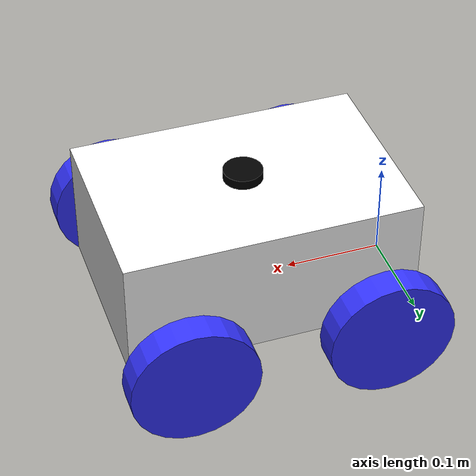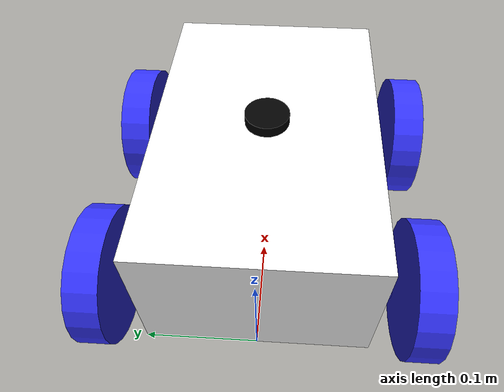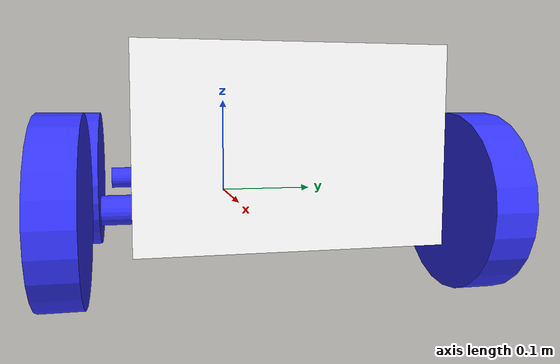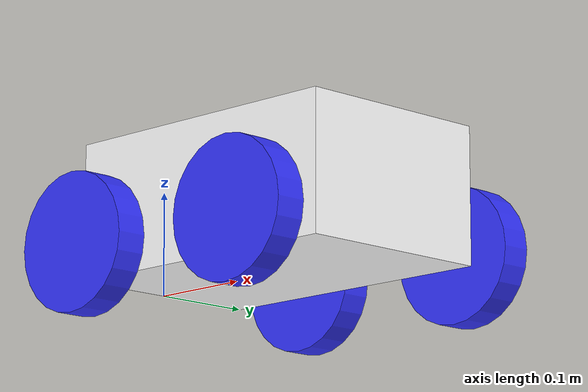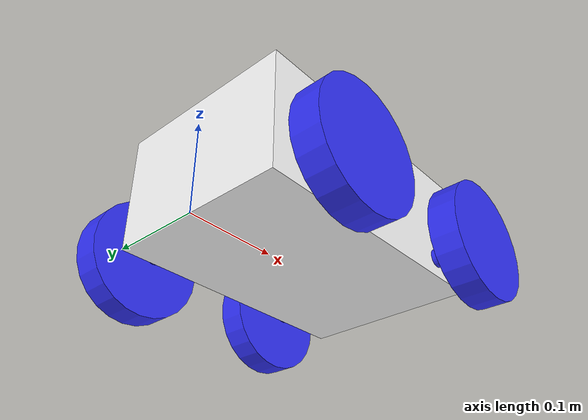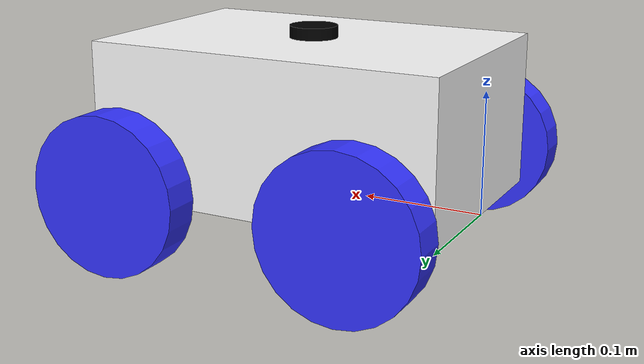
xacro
<?xml version="1.0"?>
<robot xmlns:xacro="http://www.ros.org/wiki/xacro" name="robot">

    <!-- Arguments -->
    <xacro:arg name="use_ros2_control" default="true" />
    <xacro:arg name="sim_mode" default="true" />

    <!-- Robot Description -->
    <xacro:include filename="robot_core.xacro" />

    <xacro:if value="$(arg use_ros2_control)">
        <xacro:include filename="ros2_control.xacro" />
    </xacro:if>

    <!-- Sensors -->
    <xacro:include filename="lidar.xacro" />

</robot>

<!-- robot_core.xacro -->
<robot xmlns:xacro="http://www.ros.org/wiki/xacro">

    <xacro:include filename="properties.xacro" />
    <xacro:include filename="materials.xacro" />
    <xacro:include filename="inertial_macros.xacro" />
    <xacro:include filename="robot_macros.xacro" />

    <!-- ================================ Links ================================ -->

    <!-- Base Link -->
    <link name="base_link" />

    <!-- Chasis Link -->
    <link name="chassis_link">
        <visual>
            <origin xyz="0 0 0" />
            <geometry>
                <box size="${chassis_length} ${chassis_width} ${chassis_height}" />
            </geometry>
            <material name="white" />
        </visual>
        <collision>
            <origin xyz="0 0 0" />
            <geometry>
                <box size="${chassis_length} ${chassis_width} ${chassis_height}" />
            </geometry>
        </collision>
        <xacro:inertial_box mass="${chassis_mass}" x="${chassis_length}" y="${chassis_width}"
            z="${chassis_height}">
            <origin xyz="0 0 0" />
        </xacro:inertial_box>
    </link>
    <gazebo reference="chassis">
        <material>Gazebo/White</material>
    </gazebo>

    <!-- Steering Links -->
    <xacro:steering_link prefix="front_left" />
    <xacro:steering_link prefix="front_right" />
    <xacro:steering_link prefix="rear_left" />
    <xacro:steering_link prefix="rear_right" />

    <!-- Wheel Links -->
    <xacro:wheel_link prefix="front_left" />
    <xacro:wheel_link prefix="front_right" />
    <xacro:wheel_link prefix="rear_left" />
    <xacro:wheel_link prefix="rear_right" />

    <!-- ================================ Joints ================================ -->

    <!-- Chassis Joint -->
    <joint name="chassis_joint" type="fixed">
        <parent link="base_link" />
        <child link="chassis_link" />
        <origin xyz="${chassis_offset_x} ${chassis_offset_y} ${chassis_offset_z}" />
    </joint>

    <!-- Steering Joints -->
    <xacro:steering_joint prefix="front_left" front="1" left="1" />
    <xacro:steering_joint prefix="front_right" front="1" left="-1" />
    <xacro:steering_joint prefix="rear_left" front="-1" left="1" />
    <xacro:steering_joint prefix="rear_right" front="-1" left="-1" />

    <!-- Wheel Joints -->
    <xacro:wheel_joint prefix="front_left" left="1" />
    <xacro:wheel_joint prefix="front_right" left="-1" />
    <xacro:wheel_joint prefix="rear_left" left="1" />
    <xacro:wheel_joint prefix="rear_right" left="-1" />

    <!-- ================================ Gazebo ================================ -->

    <gazebo>
        <plugin filename="ignition-gazebo-odometry-publisher-system" name="ignition::gazebo::systems::OdometryPublisher">
            <odom_frame>odom</odom_frame>
            <robot_base_frame>robot/base_link</robot_base_frame>
        </plugin>
    </gazebo>

</robot>

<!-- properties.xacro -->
<robot xmlns:xacro="http://www.ros.org/wiki/xacro" >

    <!-- Chassis -->
    <xacro:property name="chassis_length" value="0.300"/>
    <xacro:property name="chassis_width" value="0.200"/>
    <xacro:property name="chassis_height" value="0.130"/>
    <xacro:property name="chassis_mass" value="2.0"/>
    <xacro:property name="chassis_offset_x" value="${chassis_length/2}"/>
    <xacro:property name="chassis_offset_y" value="0"/>
    <xacro:property name="chassis_offset_z" value="${chassis_height/2}"/>

    <!-- Steering -->
    <xacro:property name="steering_radius" value="0.01"/>
    <xacro:property name="steering_length" value="0.02"/>
    <xacro:property name="steering_mass" value="0.02"/>
    <xacro:property name="steering_offset_x" value="${(2/3)*chassis_length/2}"/>
    <xacro:property name="steering_offset_y" value="${(chassis_width+steering_length)/2}"/>
    <xacro:property name="steering_offset_z" value="${(2/3)*chassis_height/2}"/>

    <!-- Wheels -->
    <xacro:property name="wheel_radius" value="0.065"/>
    <xacro:property name="wheel_thickness" value="0.030"/>
    <xacro:property name="wheel_mass" value="0.3"/>
    <xacro:property name="wheel_offset_z" value="${steering_length+wheel_thickness/2}"/>

</robot>

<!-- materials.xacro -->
<robot xmlns:xacro="http://www.ros.org/wiki/xacro">

    <!-- White -->
    <material name="white">
        <color rgba="1 1 1 1" />
    </material>

    <!-- Orange -->
    <material name="orange">
        <color rgba="1 0.3 0.1 1" />
    </material>

    <!-- Blue -->
    <material name="blue">
        <color rgba="0.2 0.2 1 1" />
    </material>

    <!-- Black -->
    <material name="black">
        <color rgba="0 0 0 1" />
    </material>

</robot>

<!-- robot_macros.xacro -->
<robot xmlns:xacro="http://www.ros.org/wiki/xacro">

    <xacro:include filename="properties.xacro" />

    <!-- Steering Link -->
    <xacro:macro name="steering_link" params="prefix">
        <link name="${prefix}_steering_link">
            <visual name="">
                <origin xyz="0 0 0" rpy="0 0 0" />
                <geometry>
                    <cylinder radius="${steering_radius}" length="${steering_length}" />
                </geometry>
                <material name="blue" />
            </visual>
            <collision>
                <origin xyz="0 0 0" rpy="0 0 0" />
                <geometry>
                    <cylinder radius="${steering_radius}" length="${steering_length}" />
                </geometry>
            </collision>
            <xacro:inertial_cylinder mass="${steering_mass}" length="${steering_length}"
                radius="${steering_radius}">
                <origin xyz="0 0 0" rpy="0 0 0" />
            </xacro:inertial_cylinder>
        </link>
        <gazebo reference="${prefix}_steering">
            <material>Gazebo/Blue</material>
            <mu1 value="0.5" />
            <mu2 value="0.5" />
        </gazebo>
    </xacro:macro>

    <!-- Wheel Link -->
    <xacro:macro name="wheel_link" params="prefix">
        <link name="${prefix}_wheel_link">
            <visual>
                <origin xyz="0 0 0" rpy="0 0 0" />
                <geometry>
                    <cylinder radius="${wheel_radius}" length="${wheel_thickness}" />
                </geometry>
                <material name="blue" />
            </visual>
            <collision>
                <origin xyz="0 0 0" rpy="0 0 0" />
                <geometry>
                    <cylinder radius="${wheel_radius}" length="${wheel_thickness}" />
                </geometry>
            </collision>
            <xacro:inertial_cylinder mass="${wheel_mass}" length="${wheel_thickness}"
                radius="${wheel_radius}">
                <origin xyz="0 0 0" rpy="0 0 0" />
            </xacro:inertial_cylinder>
        </link>
        <gazebo reference="${prefix}_wheel">
            <material>Gazebo/Blue</material>
            <mu1 value="1.0" />
            <mu2 value="1.0" />
        </gazebo>
    </xacro:macro>

    <!-- Steering Joints -->
    <xacro:macro name="steering_joint" params="prefix front left">
        <joint name="${prefix}_steering_joint" type="revolute">
            <origin xyz="${front*steering_offset_x} ${left*steering_offset_y} -${steering_offset_z}"
                rpy="${-1*left*pi/2} 0 0" />
            <parent link="chassis_link" />
            <child link="${prefix}_steering_link" />
            <axis xyz="0 ${-left} 0" />
            <limit lower="-${pi/4}" upper="${pi/4}" effort="1" velocity="100" />
        </joint>
    </xacro:macro>

    <!-- Wheel Joints -->
    <xacro:macro name="wheel_joint" params="prefix left">
        <joint name="${prefix}_wheel_joint" type="continuous">
            <origin xyz="0 0 ${wheel_offset_z}"
                rpy="0 0 0" />
            <parent link="${prefix}_steering_link" />
            <child link="${prefix}_wheel_link" />
            <axis xyz="0 0 ${left}" />
        </joint>
    </xacro:macro>

</robot>

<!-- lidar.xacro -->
<robot xmlns:xacro="http://www.ros.org/wiki/xacro">

    <xacro:include filename="properties.xacro" />

    <xacro:property name="laser_offset_z" value="${(chassis_height+laser_thickness)/2}" />
    <xacro:property name="laser_radius" value="0.02" />
    <xacro:property name="laser_thickness" value="0.01" />
    <xacro:property name="laser_mass" value="0.1" />

    <joint name="laser_joint" type="fixed">
        <parent link="chassis_link" />
        <child link="laser_frame" />
        <origin xyz="0 0 ${laser_offset_z}" rpy="0 0 0" />
    </joint>

    <link name="laser_frame">
        <visual>
            <geometry>
                <cylinder radius="${laser_radius}" length="${laser_thickness}" />
            </geometry>
            <material name="black" />
        </visual>
        <collision>
            <geometry>
                <cylinder radius="${laser_radius}" length="${laser_thickness}" />
            </geometry>
        </collision>
        <xacro:inertial_cylinder mass="${laser_mass}" length="${laser_thickness}"
            radius="${laser_radius}">
            <origin xyz="0 0 0" rpy="0 0 0" />
        </xacro:inertial_cylinder>

    </link>

    <!-- Ignition Gazebo -->
    <gazebo reference="laser_frame">
        <material>Gazebo/Black</material>
        <sensor name="laser" type="gpu_lidar">
            <pose>0 0 0 0 0 0</pose>
            <topic>scan</topic>
            <visualize>true</visualize>
            <update_rate>10</update_rate>
            <lidar>
                <scan>
                    <horizontal>
                        <samples>360</samples>
                        <resolution>1</resolution>
                        <min_angle>-3.14</min_angle>
                        <max_angle>3.14</max_angle>
                    </horizontal>
                </scan>
                <range>
                    <min>0.3</min>
                    <max>12</max>
                    <resolution>0.01</resolution>
                </range>
            </lidar>
            <plugin filename="ignition-gazebo-sensors-system" name="gz::sim::systems::Sensors" />
        </sensor>
    </gazebo>

</robot>
